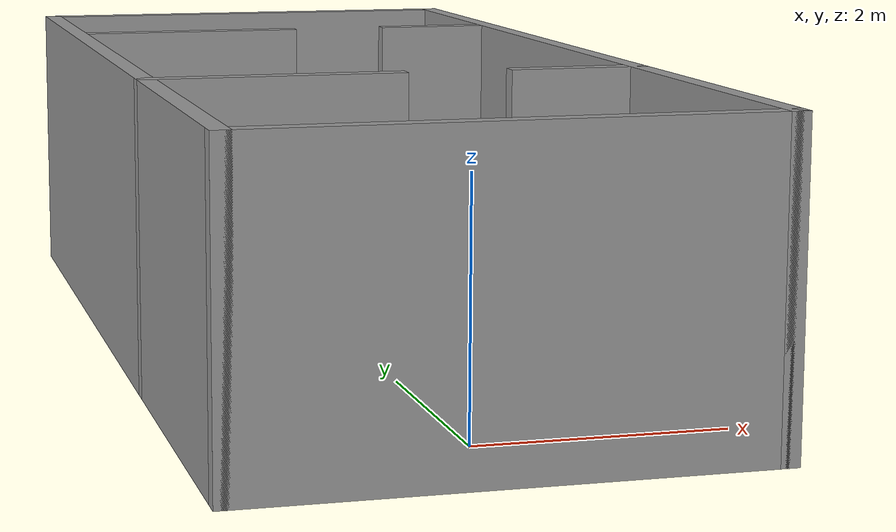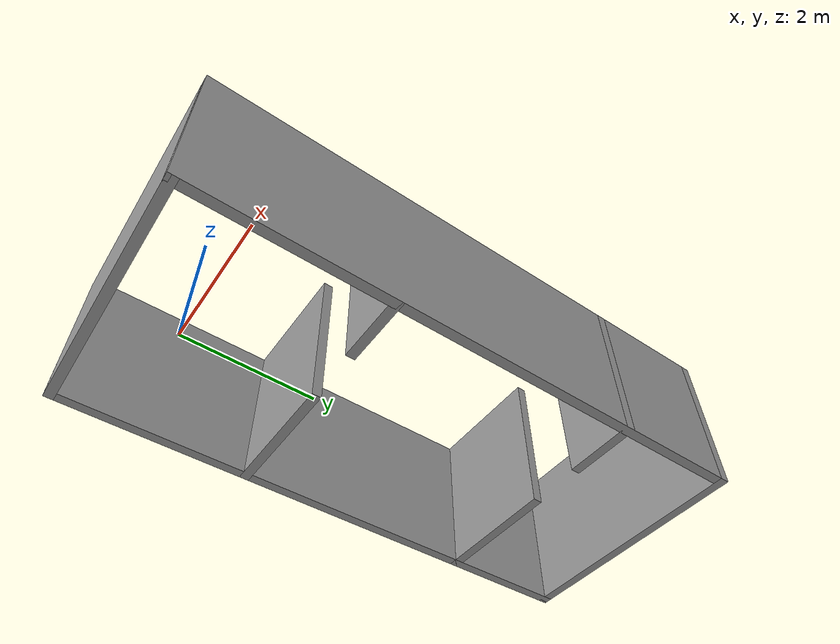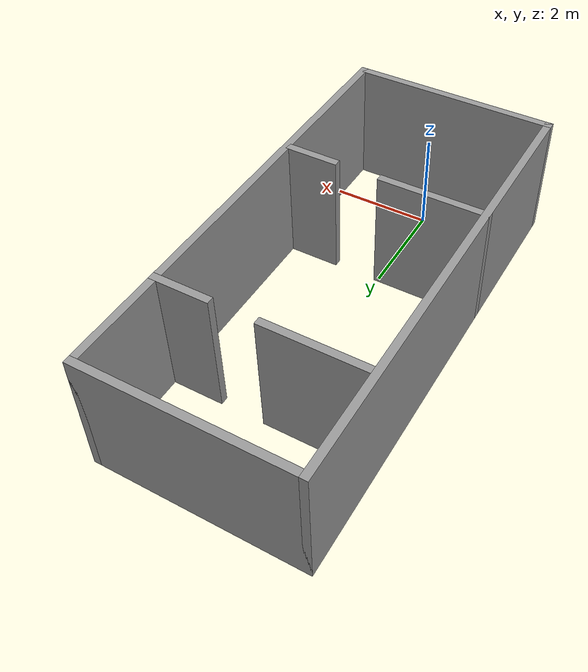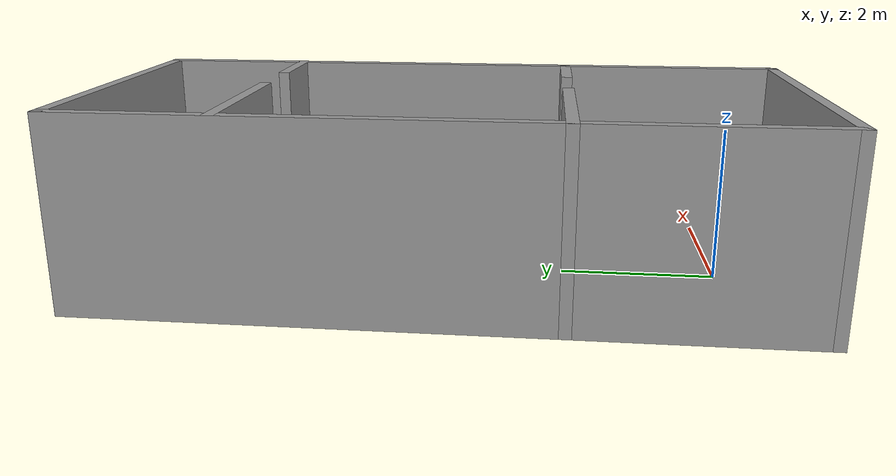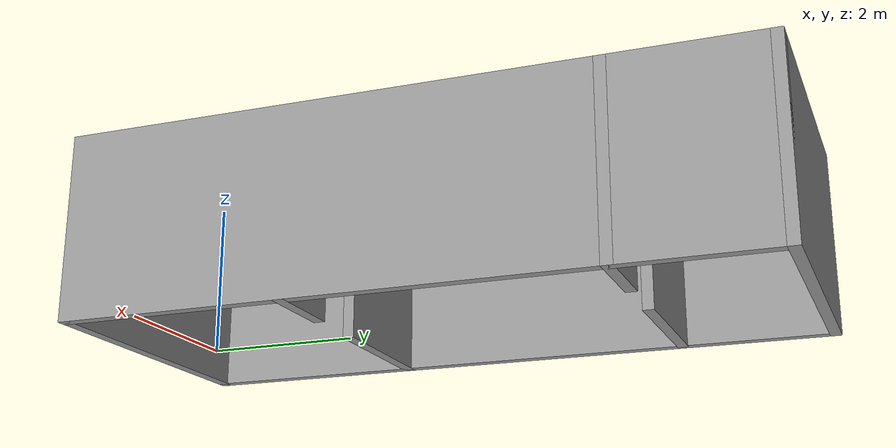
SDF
<?xml version='1.0'?>
<sdf version='1.6'>
  <model name='bcsh'>
    <pose frame=''>0 3.5 0 0 -0 0</pose>
    <link name='Wall_0'>
      <collision name='Wall_0_Collision'>
        <geometry>
          <box>
            <size>9.15 0.15 2.5</size>
          </box>
        </geometry>
        <pose frame=''>0 0 1.25 0 -0 0</pose>
      </collision>
      <visual name='Wall_0_Visual'>
        <pose frame=''>0 0 1.25 0 -0 0</pose>
        <geometry>
          <box>
            <size>9.15 0.15 2.5</size>
          </box>
        </geometry>
        <material>
          <script>
            <uri>file://media/materials/scripts/gazebo.material</uri>
            <name>Gazebo/Grey</name>
          </script>
          <ambient>1 1 1 1</ambient>
        </material>
        <meta>
          <layer>0</layer>
        </meta>
      </visual>
      <pose frame=''>-2 -0 0 0 -0 1.5708</pose>
    </link>
    <link name='Wall_10'>
      <collision name='Wall_10_Collision'>
        <geometry>
          <box>
            <size>1.15 0.15 2.5</size>
          </box>
        </geometry>
        <pose frame=''>0 0 1.25 0 -0 0</pose>
      </collision>
      <visual name='Wall_10_Visual'>
        <pose frame=''>0 0 1.25 0 -0 0</pose>
        <geometry>
          <box>
            <size>1.15 0.15 2.5</size>
          </box>
        </geometry>
        <material>
          <script>
            <uri>file://media/materials/scripts/gazebo.material</uri>
            <name>Gazebo/Grey</name>
          </script>
          <ambient>1 1 1 1</ambient>
        </material>
        <meta>
          <layer>0</layer>
        </meta>
      </visual>
      <pose frame=''>1.5 -1.5 0 0 -0 0</pose>
    </link>
    <link name='Wall_12'>
      <collision name='Wall_12_Collision'>
        <geometry>
          <box>
            <size>2.15 0.15 2.5</size>
          </box>
        </geometry>
        <pose frame=''>0 0 1.25 0 -0 0</pose>
      </collision>
      <visual name='Wall_12_Visual'>
        <pose frame=''>0 0 1.25 0 -0 0</pose>
        <geometry>
          <box>
            <size>2.15 0.15 2.5</size>
          </box>
        </geometry>
        <material>
          <script>
            <uri>file://media/materials/scripts/gazebo.material</uri>
            <name>Gazebo/Grey</name>
          </script>
          <ambient>1 1 1 1</ambient>
        </material>
        <meta>
          <layer>0</layer>
        </meta>
      </visual>
      <pose frame=''>-1 2.5 0 0 -0 0</pose>
    </link>
    <link name='Wall_14'>
      <collision name='Wall_14_Collision'>
        <geometry>
          <box>
            <size>1.15 0.15 2.5</size>
          </box>
        </geometry>
        <pose frame=''>0 0 1.25 0 -0 0</pose>
      </collision>
      <visual name='Wall_14_Visual'>
        <pose frame=''>0 0 1.25 0 -0 0</pose>
        <geometry>
          <box>
            <size>1.15 0.15 2.5</size>
          </box>
        </geometry>
        <material>
          <script>
            <uri>file://media/materials/scripts/gazebo.material</uri>
            <name>Gazebo/Grey</name>
          </script>
          <ambient>1 1 1 1</ambient>
        </material>
        <meta>
          <layer>0</layer>
        </meta>
      </visual>
      <pose frame=''>1.5 2.5 0 0 -0 0</pose>
    </link>
    <link name='Wall_2'>
      <collision name='Wall_2_Collision'>
        <geometry>
          <box>
            <size>4.15 0.15 2.5</size>
          </box>
        </geometry>
        <pose frame=''>0 0 1.25 0 -0 0</pose>
      </collision>
      <visual name='Wall_2_Visual'>
        <pose frame=''>0 0 1.25 0 -0 0</pose>
        <geometry>
          <box>
            <size>4.15 0.15 2.5</size>
          </box>
        </geometry>
        <material>
          <script>
            <uri>file://media/materials/scripts/gazebo.material</uri>
            <name>Gazebo/Grey</name>
          </script>
          <ambient>1 1 1 1</ambient>
        </material>
        <meta>
          <layer>0</layer>
        </meta>
      </visual>
      <pose frame=''>0 -4.5 0 0 -0 0</pose>
    </link>
    <link name='Wall_4'>
      <collision name='Wall_4_Collision'>
        <geometry>
          <box>
            <size>9.15 0.15 2.5</size>
          </box>
        </geometry>
        <pose frame=''>0 0 1.25 0 -0 0</pose>
      </collision>
      <visual name='Wall_4_Visual'>
        <pose frame=''>0 0 1.25 0 -0 0</pose>
        <geometry>
          <box>
            <size>9.15 0.15 2.5</size>
          </box>
        </geometry>
        <material>
          <script>
            <uri>file://media/materials/scripts/gazebo.material</uri>
            <name>Gazebo/Grey</name>
          </script>
          <ambient>1 1 1 1</ambient>
        </material>
        <meta>
          <layer>0</layer>
        </meta>
      </visual>
      <pose frame=''>2 -0 0 0 -0 1.5708</pose>
    </link>
    <link name='Wall_6'>
      <collision name='Wall_6_Collision'>
        <geometry>
          <box>
            <size>4.15 0.15 2.5</size>
          </box>
        </geometry>
        <pose frame=''>0 0 1.25 0 -0 0</pose>
      </collision>
      <visual name='Wall_6_Visual'>
        <pose frame=''>0 0 1.25 0 -0 0</pose>
        <geometry>
          <box>
            <size>4.15 0.15 2.5</size>
          </box>
        </geometry>
        <material>
          <script>
            <uri>file://media/materials/scripts/gazebo.material</uri>
            <name>Gazebo/Grey</name>
          </script>
          <ambient>1 1 1 1</ambient>
        </material>
        <meta>
          <layer>0</layer>
        </meta>
      </visual>
      <pose frame=''>0 4.5 0 0 -0 0</pose>
    </link>
    <link name='Wall_8'>
      <collision name='Wall_8_Collision'>
        <geometry>
          <box>
            <size>2.15 0.15 2.5</size>
          </box>
        </geometry>
        <pose frame=''>0 0 1.25 0 -0 0</pose>
      </collision>
      <visual name='Wall_8_Visual'>
        <pose frame=''>0 0 1.25 0 -0 0</pose>
        <geometry>
          <box>
            <size>2.15 0.15 2.5</size>
          </box>
        </geometry>
        <material>
          <script>
            <uri>file://media/materials/scripts/gazebo.material</uri>
            <name>Gazebo/Grey</name>
          </script>
          <ambient>1 1 1 1</ambient>
        </material>
        <meta>
          <layer>0</layer>
        </meta>
      </visual>
      <pose frame=''>-1 -1.5 0 0 -0 0</pose>
    </link>
    <static>1</static>
  </model>
</sdf>
